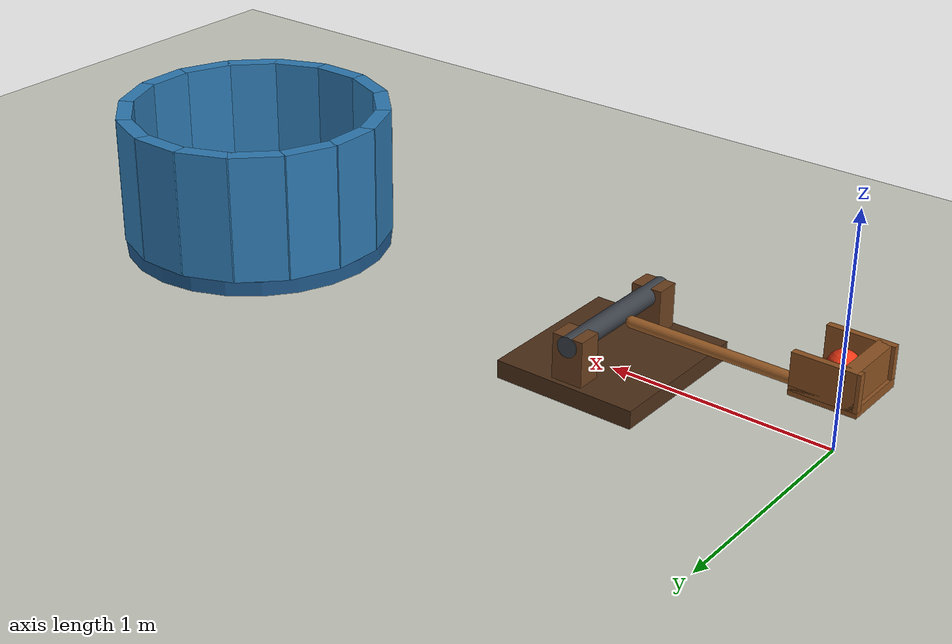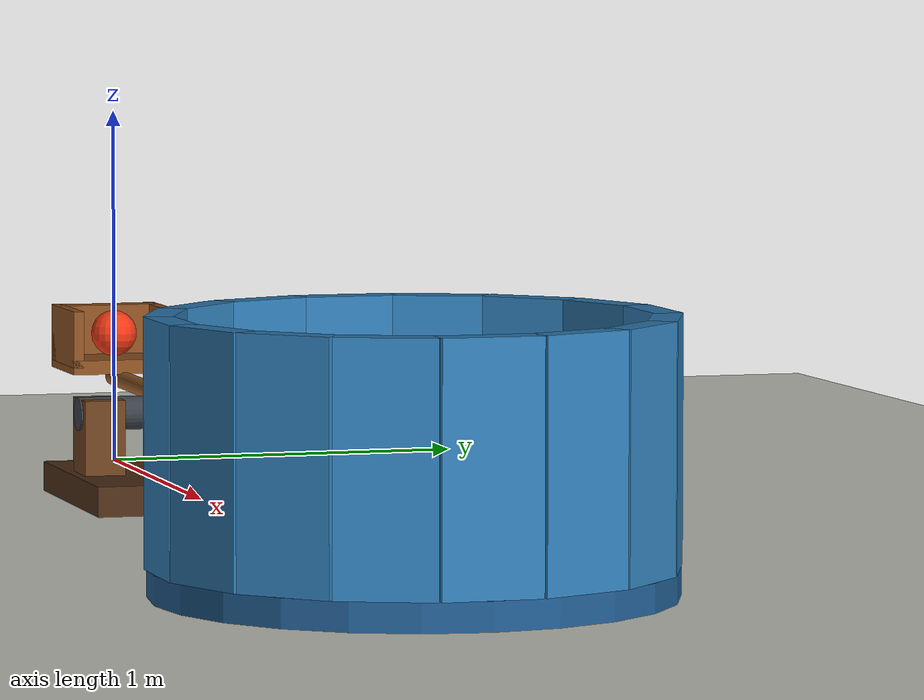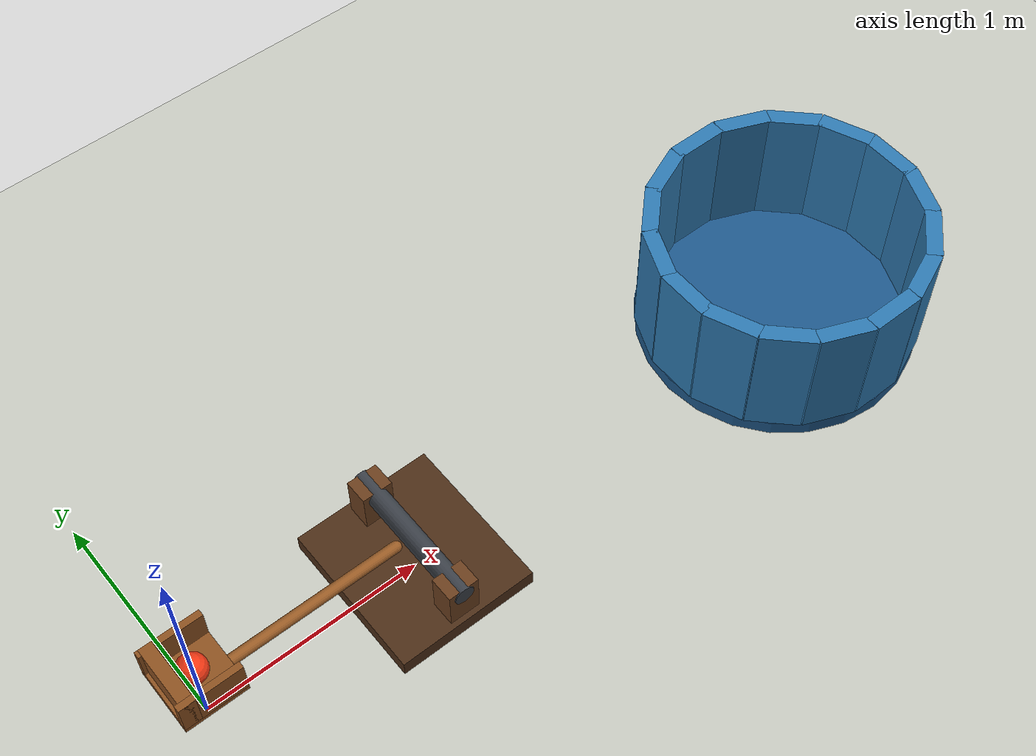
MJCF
<mujoco model="catapult_into_bucket">
  <compiler angle="degree" autolimits="true"/>
  <option timestep="0.002" gravity="0 0 -9.81" integrator="implicitfast" cone="elliptic" iterations="100"/>
  <visual>
    <headlight ambient="0.35 0.35 0.35" diffuse="0.7 0.7 0.7" specular="0.2 0.2 0.2"/>
  </visual>

  <worldbody>
    <light name="key_light" pos="1 -3 5" dir="0 0 -1"/>
    <camera name="overview" pos="1.5 -6 3" xyaxes="1 0 0 0 0.4 0.916515"/>
    <geom name="floor" type="plane" pos="0 0 0" size="8 5 0.1" rgba="0.78 0.79 0.75 1" friction="1 0.03 0.01"/>

    <!-- The initial ball position and bucket body centre are exactly 3 m apart. -->
    <body name="catapult_base" pos="1 0 0">
      <geom name="catapult_foot" type="box" pos="0 0 0.04" size="0.32 0.36 0.04" rgba="0.30 0.18 0.09 1"/>
      <geom name="catapult_support_left" type="box" pos="0 -0.28 0.16" size="0.07 0.055 0.12" rgba="0.42 0.25 0.12 1"/>
      <geom name="catapult_support_right" type="box" pos="0 0.28 0.16" size="0.07 0.055 0.12" rgba="0.42 0.25 0.12 1"/>
      <geom name="catapult_axle" type="cylinder" fromto="0 -0.34 0.24 0 0.34 0.24" size="0.045" rgba="0.23 0.25 0.28 1"/>

      <!-- The beam has 10 mm clearance from the axle throughout its rotation. -->
      <body name="catapult_arm" pos="0 0 0.24">
        <joint name="catapult_hinge" type="hinge" axis="0 1 0" range="0 45" damping="0.02" armature="0.005" solreflimit="0.004 1" solimplimit="0.99 0.999 0.001"/>
        <geom name="catapult_beam" type="capsule" fromto="-0.08 0 0 -1 0 0" size="0.025" mass="0.18" rgba="0.60 0.36 0.15 1"/>
        <geom name="catapult_spoon_bottom" type="box" pos="-1 0 0.04" size="0.14 0.15 0.02" mass="0.05" priority="1" condim="3" friction="0 0 0" solref="0.004 1" solimp="0.95 0.99 0.001" rgba="0.55 0.32 0.13 1"/>
        <geom name="catapult_spoon_back" type="box" pos="-1.095 0 0.12" size="0.03 0.15 0.08" mass="0.03" priority="1" condim="3" friction="0 0 0" solref="0.004 1" solimp="0.95 0.99 0.001" rgba="0.55 0.32 0.13 1"/>
        <geom name="catapult_spoon_left" type="box" pos="-1 -0.135 0.12" size="0.14 0.015 0.08" mass="0.02" priority="1" condim="3" friction="0 0 0" solref="0.004 1" solimp="0.95 0.99 0.001" rgba="0.55 0.32 0.13 1"/>
        <geom name="catapult_spoon_right" type="box" pos="-1 0.135 0.12" size="0.14 0.015 0.08" mass="0.02" priority="1" condim="3" friction="0 0 0" solref="0.004 1" solimp="0.95 0.99 0.001" rgba="0.55 0.32 0.13 1"/>
      </body>
    </body>

    <body name="ball" pos="0 0 0.365">
      <freejoint name="ball_free"/>
      <geom name="ball" type="sphere" size="0.065" mass="0.12" condim="6" friction="1 0.04 0.02" solref="0.008 1" solimp="0.95 0.99 0.001" rgba="0.95 0.22 0.08 1"/>
    </body>

    <!-- An open bucket with a solid bottom and overlapping polygonal walls. -->
    <body name="bucket" pos="3 0 0.365">
      <geom name="bucket_bottom" type="cylinder" pos="0 0 -0.33" size="0.625 0.035" priority="2" condim="6" friction="1 0.04 0.02" solref="0.008 1" rgba="0.12 0.35 0.55 1"/>
      <geom name="bucket_wall_00" type="box" pos="0.585 0 0" euler="0 0 0" size="0.035 0.12 0.295" priority="2" condim="6" friction="1 0.04 0.02" solref="0.008 1" rgba="0.18 0.48 0.70 1"/>
      <geom name="bucket_wall_01" type="box" pos="0.54047 0.22387 0" euler="0 0 22.5" size="0.035 0.12 0.295" priority="2" condim="6" friction="1 0.04 0.02" solref="0.008 1" rgba="0.18 0.48 0.70 1"/>
      <geom name="bucket_wall_02" type="box" pos="0.413657 0.413657 0" euler="0 0 45" size="0.035 0.12 0.295" priority="2" condim="6" friction="1 0.04 0.02" solref="0.008 1" rgba="0.18 0.48 0.70 1"/>
      <geom name="bucket_wall_03" type="box" pos="0.22387 0.54047 0" euler="0 0 67.5" size="0.035 0.12 0.295" priority="2" condim="6" friction="1 0.04 0.02" solref="0.008 1" rgba="0.18 0.48 0.70 1"/>
      <geom name="bucket_wall_04" type="box" pos="0 0.585 0" euler="0 0 90" size="0.035 0.12 0.295" priority="2" condim="6" friction="1 0.04 0.02" solref="0.008 1" rgba="0.18 0.48 0.70 1"/>
      <geom name="bucket_wall_05" type="box" pos="-0.22387 0.54047 0" euler="0 0 112.5" size="0.035 0.12 0.295" priority="2" condim="6" friction="1 0.04 0.02" solref="0.008 1" rgba="0.18 0.48 0.70 1"/>
      <geom name="bucket_wall_06" type="box" pos="-0.413657 0.413657 0" euler="0 0 135" size="0.035 0.12 0.295" priority="2" condim="6" friction="1 0.04 0.02" solref="0.008 1" rgba="0.18 0.48 0.70 1"/>
      <geom name="bucket_wall_07" type="box" pos="-0.54047 0.22387 0" euler="0 0 157.5" size="0.035 0.12 0.295" priority="2" condim="6" friction="1 0.04 0.02" solref="0.008 1" rgba="0.18 0.48 0.70 1"/>
      <geom name="bucket_wall_08" type="box" pos="-0.585 0 0" euler="0 0 180" size="0.035 0.12 0.295" priority="2" condim="6" friction="1 0.04 0.02" solref="0.008 1" rgba="0.18 0.48 0.70 1"/>
      <geom name="bucket_wall_09" type="box" pos="-0.54047 -0.22387 0" euler="0 0 202.5" size="0.035 0.12 0.295" priority="2" condim="6" friction="1 0.04 0.02" solref="0.008 1" rgba="0.18 0.48 0.70 1"/>
      <geom name="bucket_wall_10" type="box" pos="-0.413657 -0.413657 0" euler="0 0 225" size="0.035 0.12 0.295" priority="2" condim="6" friction="1 0.04 0.02" solref="0.008 1" rgba="0.18 0.48 0.70 1"/>
      <geom name="bucket_wall_11" type="box" pos="-0.22387 -0.54047 0" euler="0 0 247.5" size="0.035 0.12 0.295" priority="2" condim="6" friction="1 0.04 0.02" solref="0.008 1" rgba="0.18 0.48 0.70 1"/>
      <geom name="bucket_wall_12" type="box" pos="0 -0.585 0" euler="0 0 270" size="0.035 0.12 0.295" priority="2" condim="6" friction="1 0.04 0.02" solref="0.008 1" rgba="0.18 0.48 0.70 1"/>
      <geom name="bucket_wall_13" type="box" pos="0.22387 -0.54047 0" euler="0 0 292.5" size="0.035 0.12 0.295" priority="2" condim="6" friction="1 0.04 0.02" solref="0.008 1" rgba="0.18 0.48 0.70 1"/>
      <geom name="bucket_wall_14" type="box" pos="0.413657 -0.413657 0" euler="0 0 315" size="0.035 0.12 0.295" priority="2" condim="6" friction="1 0.04 0.02" solref="0.008 1" rgba="0.18 0.48 0.70 1"/>
      <geom name="bucket_wall_15" type="box" pos="0.54047 -0.22387 0" euler="0 0 337.5" size="0.035 0.12 0.295" priority="2" condim="6" friction="1 0.04 0.02" solref="0.008 1" rgba="0.18 0.48 0.70 1"/>
    </body>
  </worldbody>

  <actuator>
    <velocity name="catapult_drive" joint="catapult_hinge" kv="20" ctrllimited="true" ctrlrange="0 4.5" forcelimited="true" forcerange="-25 25"/>
  </actuator>

  <keyframe>
    <key name="start" qpos="0 0 0 0.365 1 0 0 0" qvel="0 0 0 0 0 0 0" ctrl="4.5"/>
  </keyframe>
</mujoco>
